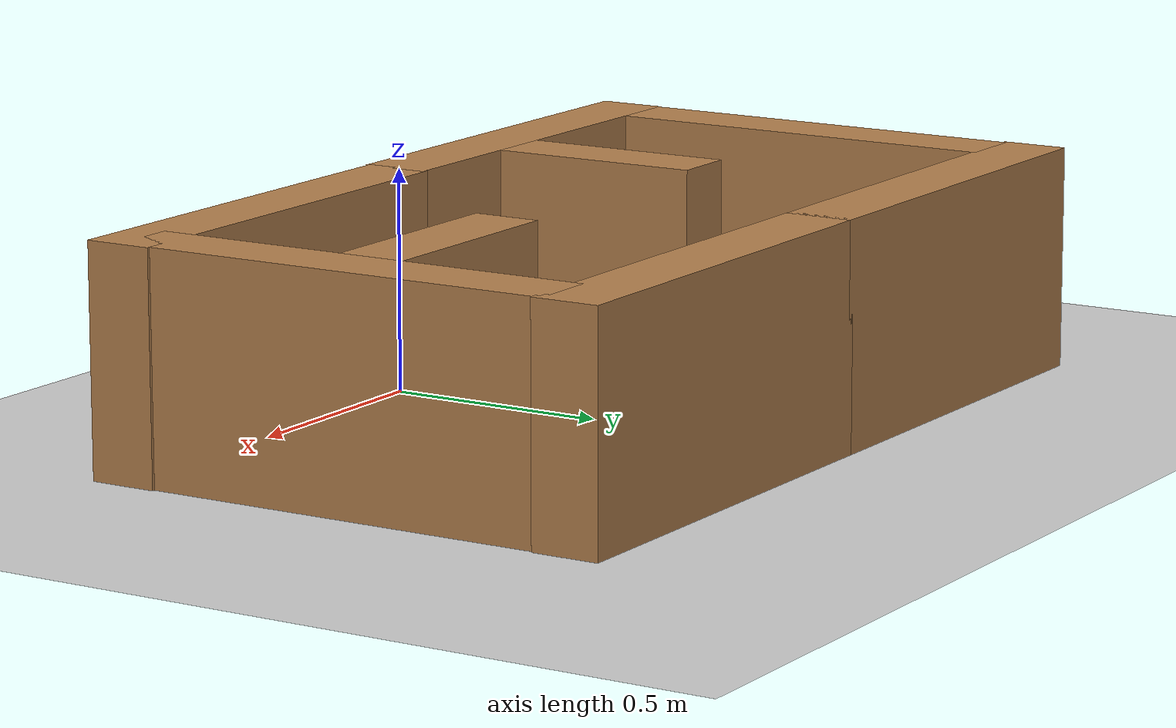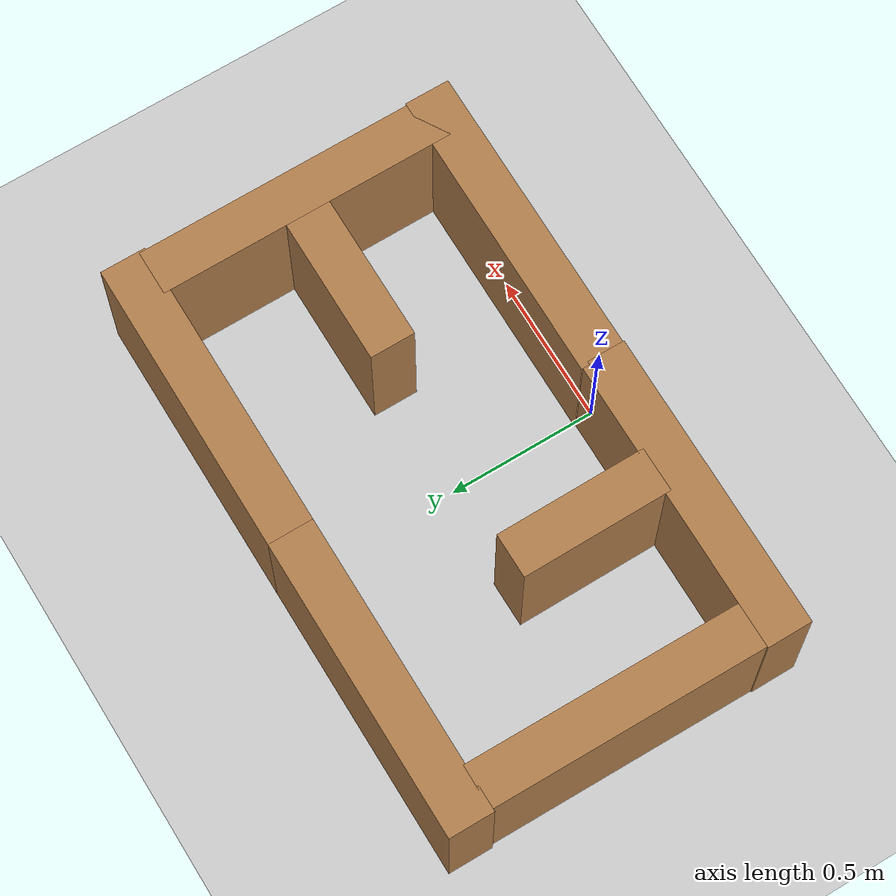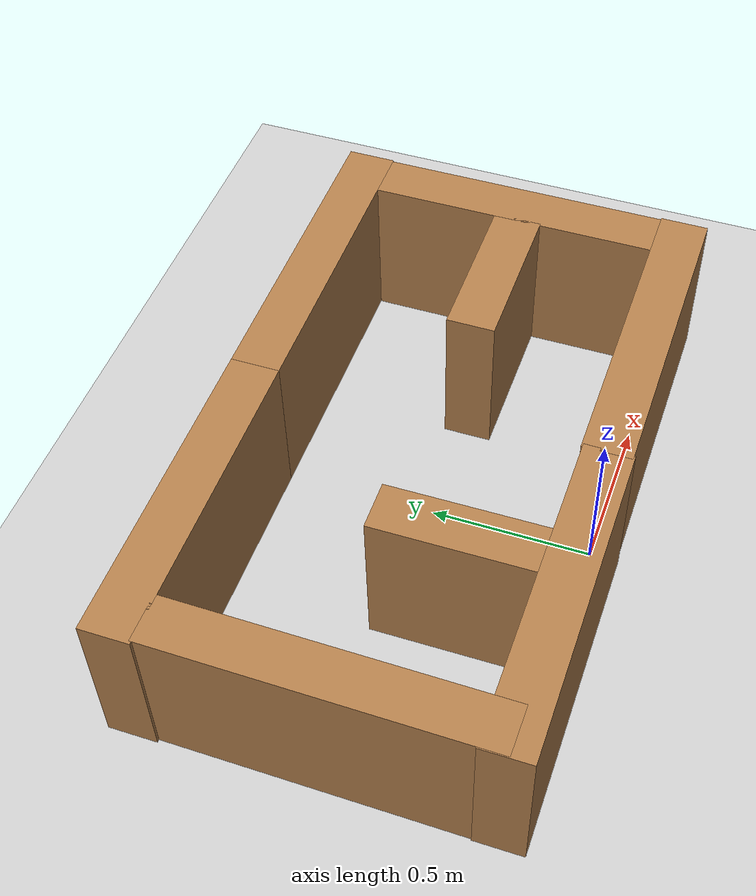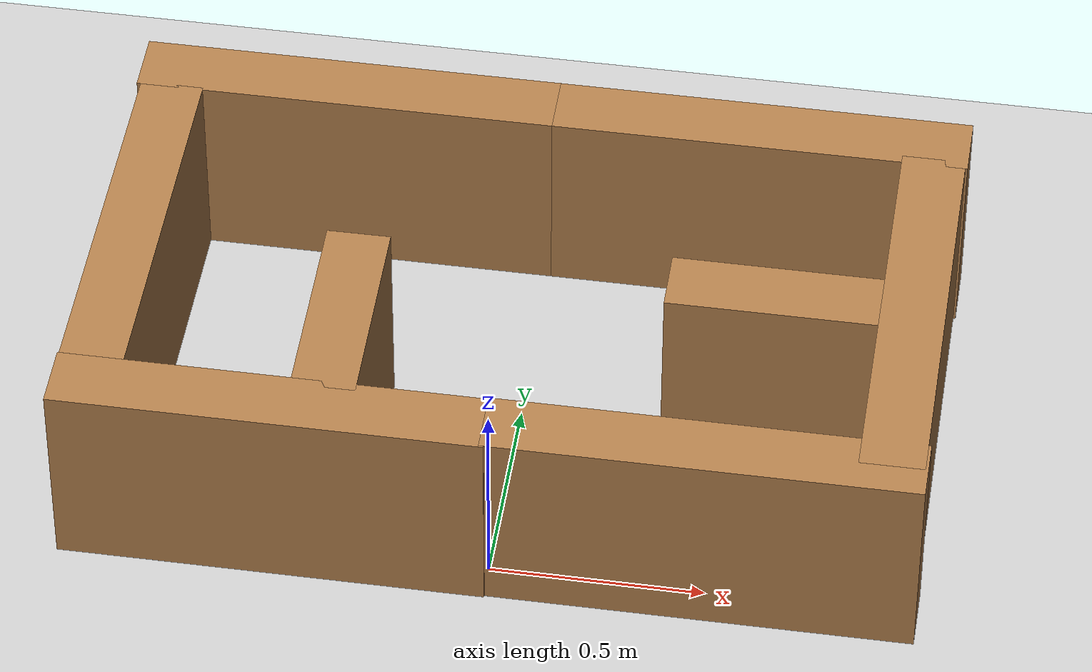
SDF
<sdf version="1.6">
 <world name="default">
  <light name="sun" type="directional">
   <pose>0 0 10 0 -0 0</pose>
   <diffuse>0.8 0.8 0.8 1</diffuse>
   <specular>0.2 0.2 0.2 1</specular>
   <attenuation>
    <range>1000</range>
    <constant>0.9</constant>
    <linear>0.01</linear>
    <quadratic>0.001</quadratic>
   </attenuation>
   <direction>-0.5 0.1 -0.9</direction>
  </light>
  <model name="ground_plane">
   <static>1</static>
   <link name="link">
    <collision name="collision">
     <geometry><plane><normal>0 0 1</normal><size>100 100</size></plane></geometry>
     <surface>
      <contact><collide_bitmask>65535</collide_bitmask></contact>
      <friction><ode><mu>100</mu><mu2>50</mu2></ode></friction>
     </surface>
    </collision>
    <visual name="visual">
     <cast_shadows>0</cast_shadows>
     <geometry><plane><normal>0 0 1</normal><size>100 100</size></plane></geometry>
     <material>
      <script><uri>file://media/materials/scripts/gazebo.material</uri><name>Gazebo/Grey</name></script>
     </material>
    </visual>
   </link>
  </model>
  <gravity>0 0 -9.8</gravity>
  <magnetic_field>6e-06 2.3e-05 -4.2e-05</magnetic_field>
  <atmosphere type="adiabatic"/>
  <physics name="default_physics" default="0" type="ode">
   <max_step_size>0.001</max_step_size>
   <real_time_factor>1</real_time_factor>
   <real_time_update_rate>1000</real_time_update_rate>
  </physics>
  <scene><ambient>0.4 0.4 0.4 1</ambient><background>0.7 0.7 0.7 1</background><shadows>1</shadows></scene>
  <audio><device>default</device></audio>
  <spherical_coordinates>
   <surface_model>EARTH_WGS84</surface_model>
   <latitude_deg>0</latitude_deg>
   <longitude_deg>0</longitude_deg>
   <elevation>0</elevation>
   <heading_deg>0</heading_deg>
  </spherical_coordinates>
  <model name="wall1m">
   <pose>0.489775 -0.007824 0 0 -0 0</pose>
   <link name="Wall_0">
    <collision name="Wall_0_Collision">
     <geometry><box><size>1 0.15 0.5</size></box></geometry>
     <pose>0 0 0.25 0 -0 0</pose>
    </collision>
    <visual name="Wall_0_Visual">
     <pose>0 0 0.25 0 -0 0</pose>
     <geometry><box><size>1 0.15 0.5</size></box></geometry>
     <material>
      <script><uri>file://media/materials/scripts/gazebo.material</uri><name>Gazebo/Wood</name></script>
      <ambient>1 1 1 1</ambient>
     </material>
     <meta><layer>0</layer></meta>
    </visual>
   </link>
   <static>1</static>
  </model>
  <model name="wall1m_0">
   <pose>-0.498784 -0.012024 0 0 -0 0</pose>
   <link name="Wall_0">
    <collision name="Wall_0_Collision">
     <geometry><box><size>1 0.15 0.5</size></box></geometry>
     <pose>0 0 0.25 0 -0 0</pose>
    </collision>
    <visual name="Wall_0_Visual">
     <pose>0 0 0.25 0 -0 0</pose>
     <geometry><box><size>1 0.15 0.5</size></box></geometry>
     <material>
      <script><uri>file://media/materials/scripts/gazebo.material</uri><name>Gazebo/Wood</name></script>
      <ambient>1 1 1 1</ambient>
     </material>
     <meta><layer>0</layer></meta>
    </visual>
   </link>
   <static>1</static>
  </model>
  <model name="wall1m_1">
   <pose>0.486766 1.04564 0 0 -0 0</pose>
   <link name="Wall_0">
    <collision name="Wall_0_Collision">
     <geometry><box><size>1 0.15 0.5</size></box></geometry>
     <pose>0 0 0.25 0 -0 0</pose>
    </collision>
    <visual name="Wall_0_Visual">
     <pose>0 0 0.25 0 -0 0</pose>
     <geometry><box><size>1 0.15 0.5</size></box></geometry>
     <material>
      <script><uri>file://media/materials/scripts/gazebo.material</uri><name>Gazebo/Wood</name></script>
      <ambient>1 1 1 1</ambient>
     </material>
     <meta><layer>0</layer></meta>
    </visual>
   </link>
   <static>1</static>
  </model>
  <model name="wall1m_2">
   <pose>-0.498784 1.04564 0 0 -0 0</pose>
   <link name="Wall_0">
    <collision name="Wall_0_Collision">
     <geometry><box><size>1 0.15 0.5</size></box></geometry>
     <pose>0 0 0.25 0 -0 0</pose>
    </collision>
    <visual name="Wall_0_Visual">
     <pose>0 0 0.25 0 -0 0</pose>
     <geometry><box><size>1 0.15 0.5</size></box></geometry>
     <material>
      <script><uri>file://media/materials/scripts/gazebo.material</uri><name>Gazebo/Wood</name></script>
      <ambient>1 1 1 1</ambient>
     </material>
     <meta><layer>0</layer></meta>
    </visual>
   </link>
   <static>1</static>
  </model>
  <model name="wall1m_3">
   <pose>-0.91761 0.477967 0 0 -0 1.56485</pose>
   <link name="Wall_0">
    <collision name="Wall_0_Collision">
     <geometry><box><size>1 0.15 0.5</size></box></geometry>
     <pose>0 0 0.25 0 -0 0</pose>
    </collision>
    <visual name="Wall_0_Visual">
     <pose>0 0 0.25 0 -0 0</pose>
     <geometry><box><size>1 0.15 0.5</size></box></geometry>
     <material>
      <script><uri>file://media/materials/scripts/gazebo.material</uri><name>Gazebo/Wood</name></script>
      <ambient>1 1 1 1</ambient>
     </material>
     <meta><layer>0</layer></meta>
    </visual>
   </link>
   <static>1</static>
  </model>
  <model name="wall1m_3_clone">
   <pose>0.907315 0.492518 0 0 -0 1.57293</pose>
   <link name="Wall_0">
    <collision name="Wall_0_Collision">
     <geometry><box><size>1 0.15 0.5</size></box></geometry>
     <pose>0 0 0.25 0 -0 0</pose>
    </collision>
    <visual name="Wall_0_Visual">
     <pose>0 0 0.25 0 -0 0</pose>
     <geometry><box><size>1 0.15 0.5</size></box></geometry>
     <material>
      <script><uri>file://media/materials/scripts/gazebo.material</uri><name>Gazebo/Wood</name></script>
      <ambient>1 1 1 1</ambient>
     </material>
     <meta><layer>0</layer></meta>
    </visual>
   </link>
   <static>1</static>
  </model>
  <model name="wall05m">
   <pose>0.590252 0.5 0 0 -0 0</pose>
   <link name="Wall_0">
    <collision name="Wall_0_Collision">
     <geometry><box><size>0.5 0.15 0.5</size></box></geometry>
     <pose>0 0 0.25 0 -0 0</pose>
    </collision>
    <visual name="Wall_0_Visual">
     <pose>0 0 0.25 0 -0 0</pose>
     <geometry><box><size>0.5 0.15 0.5</size></box></geometry>
     <material>
      <script><uri>file://media/materials/scripts/gazebo.material</uri><name>Gazebo/Wood</name></script>
      <ambient>1 1 1 1</ambient>
     </material>
     <meta><layer>0</layer></meta>
    </visual>
   </link>
   <static>1</static>
  </model>
  <model name="wall05m_0">
   <pose>-0.386625 0.294018 0 0 -0 1.57655</pose>
   <link name="Wall_0">
    <collision name="Wall_0_Collision">
     <geometry><box><size>0.5 0.15 0.5</size></box></geometry>
     <pose>0 0 0.25 0 -0 0</pose>
    </collision>
    <visual name="Wall_0_Visual">
     <pose>0 0 0.25 0 -0 0</pose>
     <geometry><box><size>0.5 0.15 0.5</size></box></geometry>
     <material>
      <script><uri>file://media/materials/scripts/gazebo.material</uri><name>Gazebo/Wood</name></script>
      <ambient>1 1 1 1</ambient>
     </material>
     <meta><layer>0</layer></meta>
    </visual>
   </link>
   <static>1</static>
  </model>
 </world>
</sdf>
